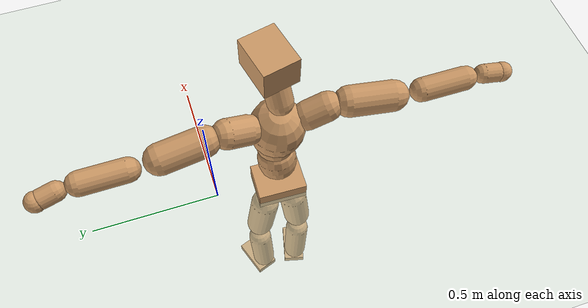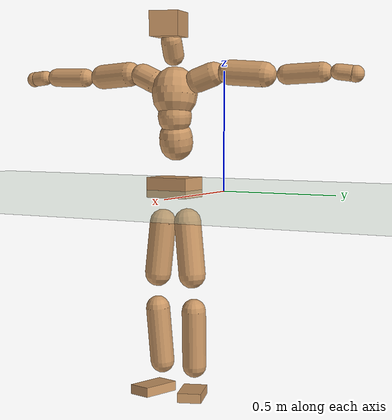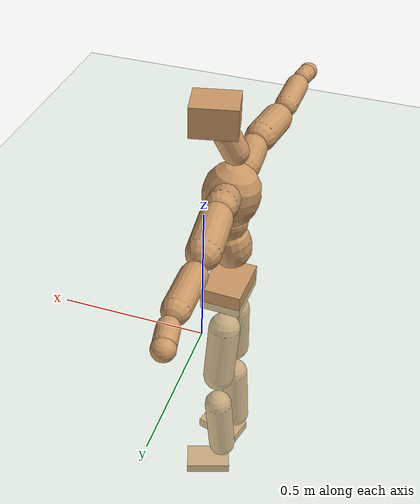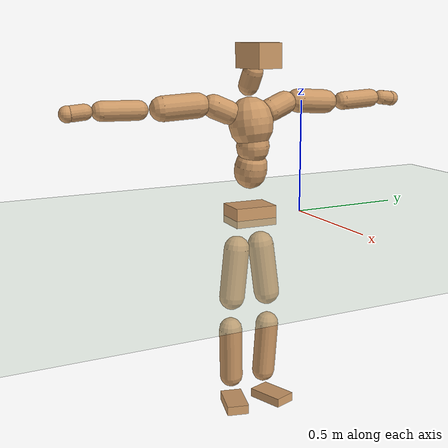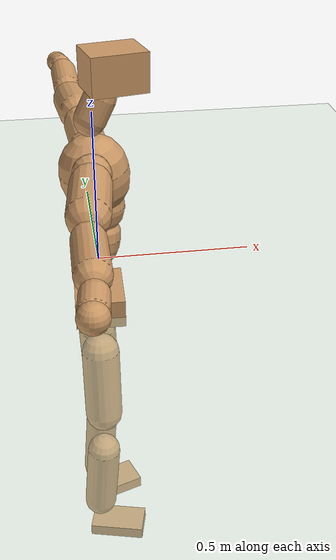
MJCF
<mujoco model="humanoid">
  <compiler coordinate="local" angle="radian"/>
  <default>
    <joint damping="0.0" armature="0.01" stiffness="0.0" limited="true"/>
    <geom conaffinity="1" condim="3" contype="7" margin="0.001" rgba="0.8 0.6 .4 1"/>
  </default>
  <asset>
    <texture type="skybox" builtin="gradient" rgb1=".4 .5 .6" rgb2="0 0 0" width="100" height="100"/>
    <texture builtin="flat" height="1278" mark="cross" markrgb="1 1 1" name="texgeom" random="0.01" rgb1="0.8 0.6 0.4" rgb2="0.8 0.6 0.4" type="cube" width="127"/>
    <texture builtin="checker" height="100" name="texplane" rgb1="0 0 0" rgb2="0.8 0.8 0.8" type="2d" width="100"/>
    <material name="MatPlane" reflectance="0.5" shininess="1" specular="1" texrepeat="60 60" texture="texplane"/>
    <material name="geom" texture="texgeom" texuniform="true"/>
  </asset>
  <worldbody>
    <light cutoff="100" diffuse="1 1 1" dir="-0 0 -1.3" directional="true" exponent="1" pos="0 0 1.3" specular=".1 .1 .1"/>
    <geom conaffinity="1" condim="3" name="floor" pos="0 0 0" rgba="0.8 0.9 0.8 1" size="100 100 .2" type="plane" material="MatPlane"/>
    <body name="Pelvis" pos="-0.0053 -0.2485 0.0169">
      <freejoint name="Pelvis"/>
      <geom type="box" contype="1" conaffinity="1" density="500" pos="-0.0119 0.0004 -0.0082" size="0.0726 0.0955 0.0433" quat="0.9999 0.0000 0.0000 -0.0169" name="Pelvis"/>
      <body name="L_Hip" pos="-0.0225 0.0515 -0.0806">
        <joint name="L_Hip_x" type="hinge" pos="0 0 0" axis="1 0 0" stiffness="800" damping="80" armature="0.02" range="-180.0000 180.0000"/>
        <joint name="L_Hip_y" type="hinge" pos="0 0 0" axis="0 1 0" stiffness="800" damping="80" armature="0.02" range="-180.0000 180.0000"/>
        <joint name="L_Hip_z" type="hinge" pos="0 0 0" axis="0 0 1" stiffness="800" damping="80" armature="0.02" range="-180.0000 180.0000"/>
        <geom type="capsule" contype="1" conaffinity="1" density="500" fromto="0.0027 0.0088 -0.0759 0.0106 0.0354 -0.3037" size="0.0583" name="L_Hip"/>
        <body name="L_Knee" pos="0.0133 0.0442 -0.3796">
          <joint name="L_Knee_x" type="hinge" pos="0 0 0" axis="1 0 0" stiffness="800" damping="80" armature="0.02" range="-180.0000 180.0000"/>
          <joint name="L_Knee_y" type="hinge" pos="0 0 0" axis="0 1 0" stiffness="800" damping="80" armature="0.02" range="-180.0000 180.0000"/>
          <joint name="L_Knee_z" type="hinge" pos="0 0 0" axis="0 0 1" stiffness="800" damping="80" armature="0.02" range="-180.0000 180.0000"/>
          <geom type="capsule" contype="1" conaffinity="1" density="500" fromto="-0.0068 -0.0026 -0.0814 -0.0272 -0.0103 -0.3257" size="0.0521" name="L_Knee"/>
          <body name="L_Ankle" pos="-0.034 -0.0129 -0.4071">
            <joint name="L_Ankle_x" type="hinge" pos="0 0 0" axis="1 0 0" stiffness="800" damping="80" armature="0.02" range="-180.0000 180.0000"/>
            <joint name="L_Ankle_y" type="hinge" pos="0 0 0" axis="0 1 0" stiffness="800" damping="80" armature="0.02" range="-180.0000 180.0000"/>
            <joint name="L_Ankle_z" type="hinge" pos="0 0 0" axis="0 0 1" stiffness="800" damping="80" armature="0.02" range="-180.0000 180.0000"/>
            <geom type="box" contype="1" conaffinity="1" density="500" pos="0.0594 0.0206 -0.0294" size="0.0859 0.051 0.0203" quat="0.9861 0.0000 0.0000 0.1660" name="L_Ankle"/>
            <body name="L_Toe" pos="0.1188 0.0412 -0.0588">
              <joint name="L_Toe_x" type="hinge" pos="0 0 0" axis="1 0 0" stiffness="500" damping="50" armature="0.02" range="-180.0000 180.0000"/>
              <joint name="L_Toe_y" type="hinge" pos="0 0 0" axis="0 1 0" stiffness="500" damping="50" armature="0.02" range="-180.0000 180.0000"/>
              <joint name="L_Toe_z" type="hinge" pos="0 0 0" axis="0 0 1" stiffness="500" damping="50" armature="0.02" range="-180.0000 180.0000"/>
              <geom type="box" contype="1" conaffinity="1" density="500" pos="0.0000 0.0000 0.0296" size="0.001 0.0025 0.001" quat="0.9853 0.0000 0.0000 0.1708" name="L_Toe"/>
            </body>
          </body>
        </body>
      </body>
      <body name="R_Hip" pos="-0.0195 -0.053 -0.0882">
        <joint name="R_Hip_x" type="hinge" pos="0 0 0" axis="1 0 0" stiffness="800" damping="80" armature="0.02" range="-180.0000 180.0000"/>
        <joint name="R_Hip_y" type="hinge" pos="0 0 0" axis="0 1 0" stiffness="800" damping="80" armature="0.02" range="-180.0000 180.0000"/>
        <joint name="R_Hip_z" type="hinge" pos="0 0 0" axis="0 0 1" stiffness="800" damping="80" armature="0.02" range="-180.0000 180.0000"/>
        <geom type="capsule" contype="1" conaffinity="1" density="500" fromto="0.0000 -0.0084 -0.0750 0.0002 -0.0336 -0.2998" size="0.0575" name="R_Hip"/>
        <body name="R_Knee" pos="0.0002 -0.042 -0.3748">
          <joint name="R_Knee_x" type="hinge" pos="0 0 0" axis="1 0 0" stiffness="800" damping="80" armature="0.02" range="-180.0000 180.0000"/>
          <joint name="R_Knee_y" type="hinge" pos="0 0 0" axis="0 1 0" stiffness="800" damping="80" armature="0.02" range="-180.0000 180.0000"/>
          <joint name="R_Knee_z" type="hinge" pos="0 0 0" axis="0 0 1" stiffness="800" damping="80" armature="0.02" range="-180.0000 180.0000"/>
          <geom type="capsule" contype="1" conaffinity="1" density="500" fromto="-0.0062 0.0037 -0.0801 -0.0250 0.0149 -0.3204" size="0.0523" name="R_Knee"/>
          <body name="R_Ankle" pos="-0.0312 0.0186 -0.4006">
            <joint name="R_Ankle_x" type="hinge" pos="0 0 0" axis="1 0 0" stiffness="800" damping="80" armature="0.02" range="-180.0000 180.0000"/>
            <joint name="R_Ankle_y" type="hinge" pos="0 0 0" axis="0 1 0" stiffness="800" damping="80" armature="0.02" range="-180.0000 180.0000"/>
            <joint name="R_Ankle_z" type="hinge" pos="0 0 0" axis="0 0 1" stiffness="800" damping="80" armature="0.02" range="-180.0000 180.0000"/>
            <geom type="box" contype="1" conaffinity="1" density="500" pos="0.0637 -0.0163 -0.0301" size="0.0884 0.0491 0.0208" quat="0.9922 0.0000 0.0000 -0.1249" name="R_Ankle"/>
            <body name="R_Toe" pos="0.1275 -0.0326 -0.0602">
              <joint name="R_Toe_x" type="hinge" pos="0 0 0" axis="1 0 0" stiffness="500" damping="50" armature="0.02" range="-180.0000 180.0000"/>
              <joint name="R_Toe_y" type="hinge" pos="0 0 0" axis="0 1 0" stiffness="500" damping="50" armature="0.02" range="-180.0000 180.0000"/>
              <joint name="R_Toe_z" type="hinge" pos="0 0 0" axis="0 0 1" stiffness="500" damping="50" armature="0.02" range="-180.0000 180.0000"/>
              <geom type="box" contype="1" conaffinity="1" density="500" pos="0.0000 0.0000 0.0311" size="0.001 0.0024 0.0011" quat="0.9933 0.0000 0.0000 -0.1158" name="R_Toe"/>
            </body>
          </body>
        </body>
      </body>
      <body name="Torso" pos="-0.0294 0.0039 0.1197">
        <joint name="Torso_x" type="hinge" pos="0 0 0" axis="1 0 0" stiffness="1000" damping="100" armature="0.02" range="-180.0000 180.0000"/>
        <joint name="Torso_y" type="hinge" pos="0 0 0" axis="0 1 0" stiffness="1000" damping="100" armature="0.02" range="-180.0000 180.0000"/>
        <joint name="Torso_z" type="hinge" pos="0 0 0" axis="0 0 1" stiffness="1000" damping="100" armature="0.02" range="-180.0000 180.0000"/>
        <geom type="capsule" contype="1" conaffinity="1" density="500" fromto="0.0176 0.0034 0.0881 0.0117 0.0022 0.0587" size="0.072" name="Torso"/>
        <body name="Spine" pos="0.0293 0.0056 0.1468">
          <joint name="Spine_x" type="hinge" pos="0 0 0" axis="1 0 0" stiffness="1000" damping="100" armature="0.02" range="-180.0000 180.0000"/>
          <joint name="Spine_y" type="hinge" pos="0 0 0" axis="0 1 0" stiffness="1000" damping="100" armature="0.02" range="-180.0000 180.0000"/>
          <joint name="Spine_z" type="hinge" pos="0 0 0" axis="0 0 1" stiffness="1000" damping="100" armature="0.02" range="-180.0000 180.0000"/>
          <geom type="capsule" contype="1" conaffinity="1" density="500" fromto="0.0015 -0.0005 0.0357 0.0010 -0.0003 0.0238" size="0.0724" name="Spine"/>
          <body name="Chest" pos="0.0025 -0.0008 0.0596">
            <joint name="Chest_x" type="hinge" pos="0 0 0" axis="1 0 0" stiffness="1000" damping="100" armature="0.02" range="-180.0000 180.0000"/>
            <joint name="Chest_y" type="hinge" pos="0 0 0" axis="0 1 0" stiffness="1000" damping="100" armature="0.02" range="-180.0000 180.0000"/>
            <joint name="Chest_z" type="hinge" pos="0 0 0" axis="0 0 1" stiffness="1000" damping="100" armature="0.02" range="-180.0000 180.0000"/>
            <geom type="capsule" contype="1" conaffinity="1" density="500" fromto="-0.0127 -0.0053 0.0858 -0.0085 -0.0035 0.0572" size="0.0971" name="Chest"/>
            <body name="Neck" pos="-0.0266 -0.015 0.21">
              <joint name="Neck_x" type="hinge" pos="0 0 0" axis="1 0 0" stiffness="500" damping="50" armature="0.02" range="-180.0000 180.0000"/>
              <joint name="Neck_y" type="hinge" pos="0 0 0" axis="0 1 0" stiffness="500" damping="50" armature="0.02" range="-180.0000 180.0000"/>
              <joint name="Neck_z" type="hinge" pos="0 0 0" axis="0 0 1" stiffness="500" damping="50" armature="0.02" range="-180.0000 180.0000"/>
              <geom type="capsule" contype="1" conaffinity="1" density="500" fromto="0.0101 0.0019 0.0194 0.0403 0.0077 0.0776" size="0.0444" name="Neck"/>
              <body name="Head" pos="0.0504 0.0097 0.097">
                <joint name="Head_x" type="hinge" pos="0 0 0" axis="1 0 0" stiffness="500" damping="50" armature="0.02" range="-180.0000 180.0000"/>
                <joint name="Head_y" type="hinge" pos="0 0 0" axis="0 1 0" stiffness="500" damping="50" armature="0.02" range="-180.0000 180.0000"/>
                <joint name="Head_z" type="hinge" pos="0 0 0" axis="0 0 1" stiffness="500" damping="50" armature="0.02" range="-180.0000 180.0000"/>
                <geom type="box" contype="1" conaffinity="1" density="500" pos="0.0262 0.0058 0.0495" size="0.0775 0.0624 0.0529" quat="0.9940 0.0000 0.0000 0.1095" name="Head"/>
              </body>
            </body>
            <body name="L_Thorax" pos="-0.0152 0.0718 0.1107">
              <joint name="L_Thorax_x" type="hinge" pos="0 0 0" axis="1 0 0" stiffness="500" damping="50" armature="0.02" range="-180.0000 180.0000"/>
              <joint name="L_Thorax_y" type="hinge" pos="0 0 0" axis="0 1 0" stiffness="500" damping="50" armature="0.02" range="-180.0000 180.0000"/>
              <joint name="L_Thorax_z" type="hinge" pos="0 0 0" axis="0 0 1" stiffness="500" damping="50" armature="0.02" range="-180.0000 180.0000"/>
              <geom type="capsule" contype="1" conaffinity="1" density="500" fromto="-0.0035 0.0248 0.0094 -0.0139 0.0992 0.0375" size="0.0519" name="L_Thorax"/>
              <body name="L_Shoulder" pos="-0.0173 0.124 0.0469">
                <joint name="L_Shoulder_x" type="hinge" pos="0 0 0" axis="1 0 0" stiffness="500" damping="50" armature="0.02" range="-720.0000 720.0000"/>
                <joint name="L_Shoulder_y" type="hinge" pos="0 0 0" axis="0 1 0" stiffness="500" damping="50" armature="0.02" range="-720.0000 720.0000"/>
                <joint name="L_Shoulder_z" type="hinge" pos="0 0 0" axis="0 0 1" stiffness="500" damping="50" armature="0.02" range="-720.0000 720.0000"/>
                <geom type="capsule" contype="1" conaffinity="1" density="500" fromto="-0.0042 0.0500 -0.0034 -0.0169 0.1998 -0.0138" size="0.0536" name="L_Shoulder"/>
                <body name="L_Elbow" pos="-0.0212 0.2498 -0.0172">
                  <joint name="L_Elbow_x" type="hinge" pos="0 0 0" axis="1 0 0" stiffness="500" damping="50" armature="0.02" range="-720.0000 720.0000"/>
                  <joint name="L_Elbow_y" type="hinge" pos="0 0 0" axis="0 1 0" stiffness="500" damping="50" armature="0.02" range="-720.0000 720.0000"/>
                  <joint name="L_Elbow_z" type="hinge" pos="0 0 0" axis="0 0 1" stiffness="500" damping="50" armature="0.02" range="-720.0000 720.0000"/>
                  <geom type="capsule" contype="1" conaffinity="1" density="500" fromto="-0.0014 0.0514 0.0024 -0.0056 0.2055 0.0096" size="0.0417" name="L_Elbow"/>
                  <body name="L_Wrist" pos="-0.007 0.2568 0.012">
                    <joint name="L_Wrist_x" type="hinge" pos="0 0 0" axis="1 0 0" stiffness="300" damping="30" armature="0.02" range="-180.0000 180.0000"/>
                    <joint name="L_Wrist_y" type="hinge" pos="0 0 0" axis="0 1 0" stiffness="300" damping="30" armature="0.02" range="-180.0000 180.0000"/>
                    <joint name="L_Wrist_z" type="hinge" pos="0 0 0" axis="0 0 1" stiffness="300" damping="30" armature="0.02" range="-180.0000 180.0000"/>
                    <geom type="capsule" contype="1" conaffinity="1" density="500" fromto="-0.0030 0.0169 -0.0021 -0.0121 0.0677 -0.0084" size="0.0333" name="L_Wrist"/>
                    <body name="L_Hand" pos="-0.0151 0.0846 -0.0105">
                      <joint name="L_Hand_x" type="hinge" pos="0 0 0" axis="1 0 0" stiffness="300" damping="30" armature="0.02" range="-180.0000 180.0000"/>
                      <joint name="L_Hand_y" type="hinge" pos="0 0 0" axis="0 1 0" stiffness="300" damping="30" armature="0.02" range="-180.0000 180.0000"/>
                      <joint name="L_Hand_z" type="hinge" pos="0 0 0" axis="0 0 1" stiffness="300" damping="30" armature="0.02" range="-180.0000 180.0000"/>
                      <geom type="sphere" contype="1" conaffinity="1" density="500" size="0.0348" pos="0.0000 0.0000 0.0000" name="L_Hand"/>
                    </body>
                  </body>
                </body>
              </body>
            </body>
            <body name="R_Thorax" pos="-0.0218 -0.0831 0.1082">
              <joint name="R_Thorax_x" type="hinge" pos="0 0 0" axis="1 0 0" stiffness="500" damping="50" armature="0.02" range="-180.0000 180.0000"/>
              <joint name="R_Thorax_y" type="hinge" pos="0 0 0" axis="0 1 0" stiffness="500" damping="50" armature="0.02" range="-180.0000 180.0000"/>
              <joint name="R_Thorax_z" type="hinge" pos="0 0 0" axis="0 0 1" stiffness="500" damping="50" armature="0.02" range="-180.0000 180.0000"/>
              <geom type="capsule" contype="1" conaffinity="1" density="500" fromto="-0.0015 -0.0225 0.0095 -0.0059 -0.0900 0.0381" size="0.0515" name="R_Thorax"/>
              <body name="R_Shoulder" pos="-0.0074 -0.1125 0.0477">
                <joint name="R_Shoulder_x" type="hinge" pos="0 0 0" axis="1 0 0" stiffness="500" damping="50" armature="0.02" range="-720.0000 720.0000"/>
                <joint name="R_Shoulder_y" type="hinge" pos="0 0 0" axis="0 1 0" stiffness="500" damping="50" armature="0.02" range="-720.0000 720.0000"/>
                <joint name="R_Shoulder_z" type="hinge" pos="0 0 0" axis="0 0 1" stiffness="500" damping="50" armature="0.02" range="-720.0000 720.0000"/>
                <geom type="capsule" contype="1" conaffinity="1" density="500" fromto="-0.0059 -0.0500 -0.0032 -0.0238 -0.2000 -0.0128" size="0.0539" name="R_Shoulder"/>
                <body name="R_Elbow" pos="-0.0297 -0.25 -0.016">
                  <joint name="R_Elbow_x" type="hinge" pos="0 0 0" axis="1 0 0" stiffness="500" damping="50" armature="0.02" range="-720.0000 720.0000"/>
                  <joint name="R_Elbow_y" type="hinge" pos="0 0 0" axis="0 1 0" stiffness="500" damping="50" armature="0.02" range="-720.0000 720.0000"/>
                  <joint name="R_Elbow_z" type="hinge" pos="0 0 0" axis="0 0 1" stiffness="500" damping="50" armature="0.02" range="-720.0000 720.0000"/>
                  <geom type="capsule" contype="1" conaffinity="1" density="500" fromto="-0.0008 -0.0516 0.0010 -0.0033 -0.2063 0.0040" size="0.0417" name="R_Elbow"/>
                  <body name="R_Wrist" pos="-0.0041 -0.2578 0.005">
                    <joint name="R_Wrist_x" type="hinge" pos="0 0 0" axis="1 0 0" stiffness="300" damping="30" armature="0.02" range="-180.0000 180.0000"/>
                    <joint name="R_Wrist_y" type="hinge" pos="0 0 0" axis="0 1 0" stiffness="300" damping="30" armature="0.02" range="-180.0000 180.0000"/>
                    <joint name="R_Wrist_z" type="hinge" pos="0 0 0" axis="0 0 1" stiffness="300" damping="30" armature="0.02" range="-180.0000 180.0000"/>
                    <geom type="capsule" contype="1" conaffinity="1" density="500" fromto="-0.0020 -0.0169 -0.0016 -0.0078 -0.0677 -0.0065" size="0.0331" name="R_Wrist"/>
                    <body name="R_Hand" pos="-0.0098 -0.0847 -0.0082">
                      <joint name="R_Hand_x" type="hinge" pos="0 0 0" axis="1 0 0" stiffness="300" damping="30" armature="0.02" range="-180.0000 180.0000"/>
                      <joint name="R_Hand_y" type="hinge" pos="0 0 0" axis="0 1 0" stiffness="300" damping="30" armature="0.02" range="-180.0000 180.0000"/>
                      <joint name="R_Hand_z" type="hinge" pos="0 0 0" axis="0 0 1" stiffness="300" damping="30" armature="0.02" range="-180.0000 180.0000"/>
                      <geom type="sphere" contype="1" conaffinity="1" density="500" size="0.0344" pos="0.0000 0.0000 0.0000" name="R_Hand"/>
                    </body>
                  </body>
                </body>
              </body>
            </body>
          </body>
        </body>
      </body>
    </body>
  </worldbody>
  <actuator>
    <motor name="L_Hip_x" joint="L_Hip_x" gear="500"/>
    <motor name="L_Hip_y" joint="L_Hip_y" gear="500"/>
    <motor name="L_Hip_z" joint="L_Hip_z" gear="500"/>
    <motor name="L_Knee_x" joint="L_Knee_x" gear="500"/>
    <motor name="L_Knee_y" joint="L_Knee_y" gear="500"/>
    <motor name="L_Knee_z" joint="L_Knee_z" gear="500"/>
    <motor name="L_Ankle_x" joint="L_Ankle_x" gear="500"/>
    <motor name="L_Ankle_y" joint="L_Ankle_y" gear="500"/>
    <motor name="L_Ankle_z" joint="L_Ankle_z" gear="500"/>
    <motor name="L_Toe_x" joint="L_Toe_x" gear="500"/>
    <motor name="L_Toe_y" joint="L_Toe_y" gear="500"/>
    <motor name="L_Toe_z" joint="L_Toe_z" gear="500"/>
    <motor name="R_Hip_x" joint="R_Hip_x" gear="500"/>
    <motor name="R_Hip_y" joint="R_Hip_y" gear="500"/>
    <motor name="R_Hip_z" joint="R_Hip_z" gear="500"/>
    <motor name="R_Knee_x" joint="R_Knee_x" gear="500"/>
    <motor name="R_Knee_y" joint="R_Knee_y" gear="500"/>
    <motor name="R_Knee_z" joint="R_Knee_z" gear="500"/>
    <motor name="R_Ankle_x" joint="R_Ankle_x" gear="500"/>
    <motor name="R_Ankle_y" joint="R_Ankle_y" gear="500"/>
    <motor name="R_Ankle_z" joint="R_Ankle_z" gear="500"/>
    <motor name="R_Toe_x" joint="R_Toe_x" gear="500"/>
    <motor name="R_Toe_y" joint="R_Toe_y" gear="500"/>
    <motor name="R_Toe_z" joint="R_Toe_z" gear="500"/>
    <motor name="Torso_x" joint="Torso_x" gear="500"/>
    <motor name="Torso_y" joint="Torso_y" gear="500"/>
    <motor name="Torso_z" joint="Torso_z" gear="500"/>
    <motor name="Spine_x" joint="Spine_x" gear="500"/>
    <motor name="Spine_y" joint="Spine_y" gear="500"/>
    <motor name="Spine_z" joint="Spine_z" gear="500"/>
    <motor name="Chest_x" joint="Chest_x" gear="500"/>
    <motor name="Chest_y" joint="Chest_y" gear="500"/>
    <motor name="Chest_z" joint="Chest_z" gear="500"/>
    <motor name="Neck_x" joint="Neck_x" gear="500"/>
    <motor name="Neck_y" joint="Neck_y" gear="500"/>
    <motor name="Neck_z" joint="Neck_z" gear="500"/>
    <motor name="Head_x" joint="Head_x" gear="500"/>
    <motor name="Head_y" joint="Head_y" gear="500"/>
    <motor name="Head_z" joint="Head_z" gear="500"/>
    <motor name="L_Thorax_x" joint="L_Thorax_x" gear="500"/>
    <motor name="L_Thorax_y" joint="L_Thorax_y" gear="500"/>
    <motor name="L_Thorax_z" joint="L_Thorax_z" gear="500"/>
    <motor name="L_Shoulder_x" joint="L_Shoulder_x" gear="500"/>
    <motor name="L_Shoulder_y" joint="L_Shoulder_y" gear="500"/>
    <motor name="L_Shoulder_z" joint="L_Shoulder_z" gear="500"/>
    <motor name="L_Elbow_x" joint="L_Elbow_x" gear="500"/>
    <motor name="L_Elbow_y" joint="L_Elbow_y" gear="500"/>
    <motor name="L_Elbow_z" joint="L_Elbow_z" gear="500"/>
    <motor name="L_Wrist_x" joint="L_Wrist_x" gear="500"/>
    <motor name="L_Wrist_y" joint="L_Wrist_y" gear="500"/>
    <motor name="L_Wrist_z" joint="L_Wrist_z" gear="500"/>
    <motor name="L_Hand_x" joint="L_Hand_x" gear="500"/>
    <motor name="L_Hand_y" joint="L_Hand_y" gear="500"/>
    <motor name="L_Hand_z" joint="L_Hand_z" gear="500"/>
    <motor name="R_Thorax_x" joint="R_Thorax_x" gear="500"/>
    <motor name="R_Thorax_y" joint="R_Thorax_y" gear="500"/>
    <motor name="R_Thorax_z" joint="R_Thorax_z" gear="500"/>
    <motor name="R_Shoulder_x" joint="R_Shoulder_x" gear="500"/>
    <motor name="R_Shoulder_y" joint="R_Shoulder_y" gear="500"/>
    <motor name="R_Shoulder_z" joint="R_Shoulder_z" gear="500"/>
    <motor name="R_Elbow_x" joint="R_Elbow_x" gear="500"/>
    <motor name="R_Elbow_y" joint="R_Elbow_y" gear="500"/>
    <motor name="R_Elbow_z" joint="R_Elbow_z" gear="500"/>
    <motor name="R_Wrist_x" joint="R_Wrist_x" gear="500"/>
    <motor name="R_Wrist_y" joint="R_Wrist_y" gear="500"/>
    <motor name="R_Wrist_z" joint="R_Wrist_z" gear="500"/>
    <motor name="R_Hand_x" joint="R_Hand_x" gear="500"/>
    <motor name="R_Hand_y" joint="R_Hand_y" gear="500"/>
    <motor name="R_Hand_z" joint="R_Hand_z" gear="500"/>
  </actuator>
  <contact>
    <exclude body1="Torso" body2="Chest"/>
    <exclude body1="Head" body2="Chest"/>
    <exclude body1="R_Knee" body2="R_Toe"/>
    <exclude body1="R_Knee" body2="L_Ankle"/>
    <exclude body1="R_Knee" body2="L_Toe"/>
    <exclude body1="L_Knee" body2="L_Toe"/>
    <exclude body1="L_Knee" body2="R_Ankle"/>
    <exclude body1="L_Knee" body2="R_Toe"/>
    <exclude body1="L_Shoulder" body2="Chest"/>
    <exclude body1="R_Shoulder" body2="Chest"/>
  </contact>
  <sensor/>
  <size njmax="700" nconmax="700"/>
</mujoco>
